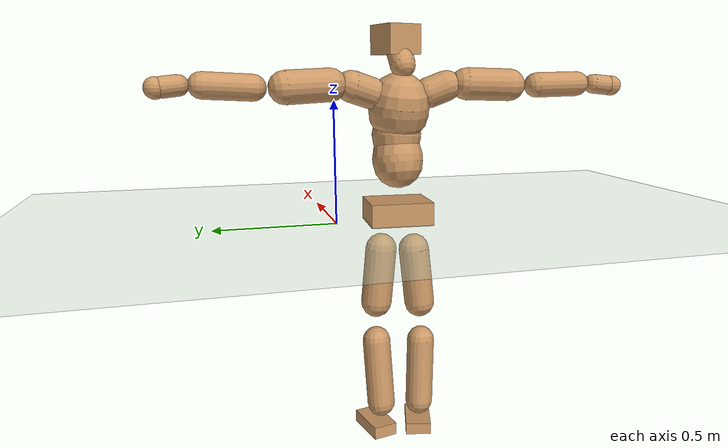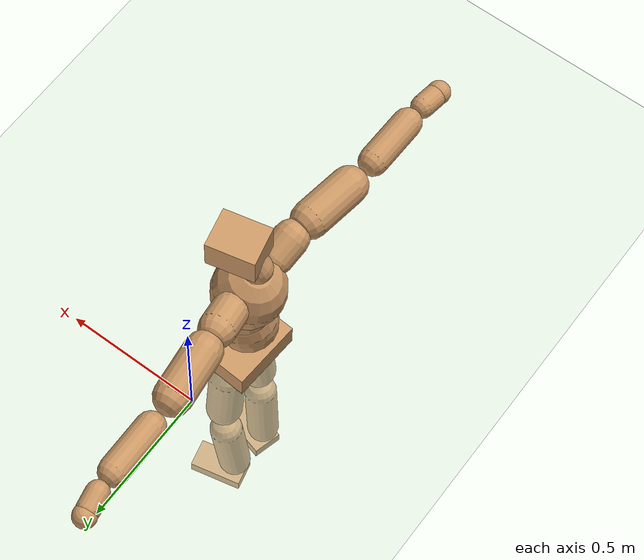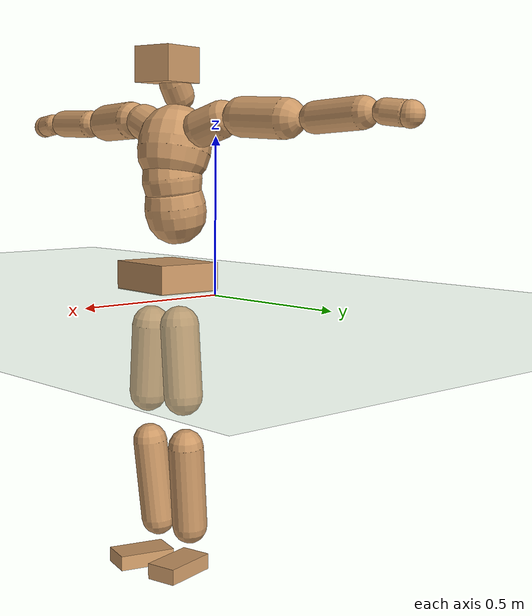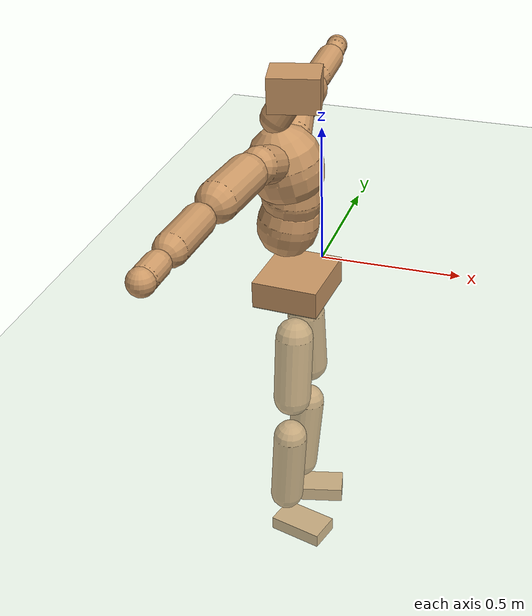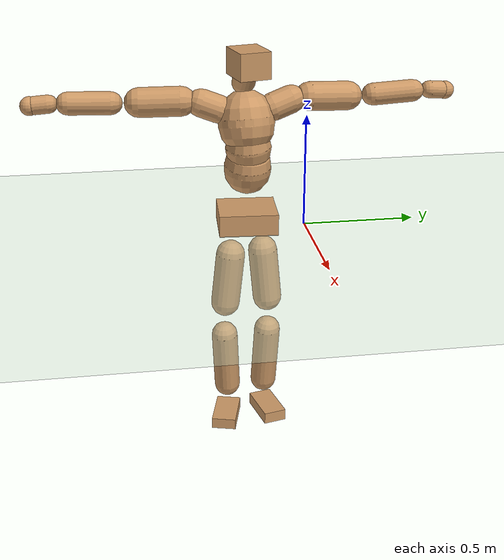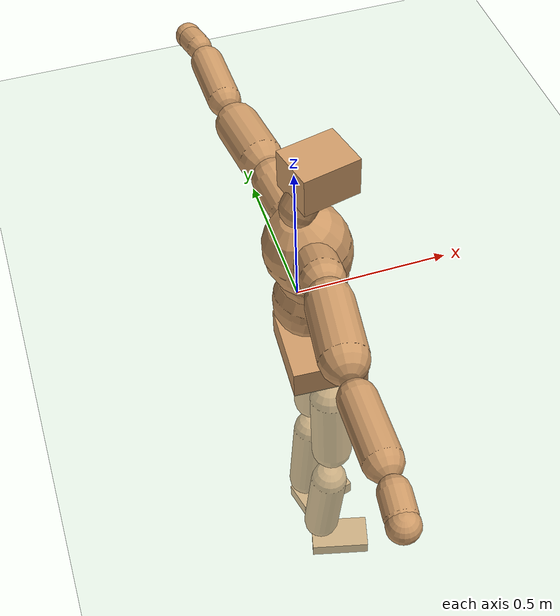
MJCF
<mujoco model="humanoid">
  <compiler coordinate="local" angle="radian"/>
  <default>
    <joint damping="0.0" armature="0.01" stiffness="0.0" limited="true"/>
    <geom conaffinity="1" condim="3" contype="7" margin="0.001" rgba="0.8 0.6 .4 1"/>
  </default>
  <asset>
    <texture type="skybox" builtin="gradient" rgb1=".4 .5 .6" rgb2="0 0 0" width="100" height="100"/>
    <texture builtin="flat" height="1278" mark="cross" markrgb="1 1 1" name="texgeom" random="0.01" rgb1="0.8 0.6 0.4" rgb2="0.8 0.6 0.4" type="cube" width="127"/>
    <texture builtin="checker" height="100" name="texplane" rgb1="0 0 0" rgb2="0.8 0.8 0.8" type="2d" width="100"/>
    <material name="MatPlane" reflectance="0.5" shininess="1" specular="1" texrepeat="60 60" texture="texplane"/>
    <material name="geom" texture="texgeom" texuniform="true"/>
  </asset>
  <worldbody>
    <light cutoff="100" diffuse="1 1 1" dir="-0 0 -1.3" directional="true" exponent="1" pos="0 0 1.3" specular=".1 .1 .1"/>
    <geom conaffinity="1" condim="3" name="floor" pos="0 0 0" rgba="0.8 0.9 0.8 1" size="100 100 .2" type="plane" material="MatPlane"/>
    <body name="Pelvis" pos="-0.0013 -0.2585 0.0503">
      <freejoint name="Pelvis"/>
      <geom type="box" contype="1" conaffinity="1" density="500" pos="-0.0095 0.0006 -0.0077" size="0.113 0.1294 0.0477" quat="0.9996 0.0000 0.0000 -0.0295" name="Pelvis"/>
      <body name="L_Hip" pos="-0.0055 0.0647 -0.0893">
        <joint name="L_Hip_x" type="hinge" pos="0 0 0" axis="1 0 0" stiffness="800" damping="80" armature="0.02" range="-180.0000 180.0000"/>
        <joint name="L_Hip_y" type="hinge" pos="0 0 0" axis="0 1 0" stiffness="800" damping="80" armature="0.02" range="-180.0000 180.0000"/>
        <joint name="L_Hip_z" type="hinge" pos="0 0 0" axis="0 0 1" stiffness="800" damping="80" armature="0.02" range="-180.0000 180.0000"/>
        <geom type="capsule" contype="1" conaffinity="1" density="500" fromto="0.0009 0.0074 -0.0788 0.0035 0.0294 -0.3153" size="0.0651" name="L_Hip"/>
        <body name="L_Knee" pos="0.0043 0.0368 -0.3942">
          <joint name="L_Knee_x" type="hinge" pos="0 0 0" axis="1 0 0" stiffness="800" damping="80" armature="0.02" range="-180.0000 180.0000"/>
          <joint name="L_Knee_y" type="hinge" pos="0 0 0" axis="0 1 0" stiffness="800" damping="80" armature="0.02" range="-180.0000 180.0000"/>
          <joint name="L_Knee_z" type="hinge" pos="0 0 0" axis="0 0 1" stiffness="800" damping="80" armature="0.02" range="-180.0000 180.0000"/>
          <geom type="capsule" contype="1" conaffinity="1" density="500" fromto="-0.0089 -0.0040 -0.0947 -0.0357 -0.0161 -0.3787" size="0.0597" name="L_Knee"/>
          <body name="L_Ankle" pos="-0.0446 -0.0202 -0.4733">
            <joint name="L_Ankle_x" type="hinge" pos="0 0 0" axis="1 0 0" stiffness="800" damping="80" armature="0.02" range="-180.0000 180.0000"/>
            <joint name="L_Ankle_y" type="hinge" pos="0 0 0" axis="0 1 0" stiffness="800" damping="80" armature="0.02" range="-180.0000 180.0000"/>
            <joint name="L_Ankle_z" type="hinge" pos="0 0 0" axis="0 0 1" stiffness="800" damping="80" armature="0.02" range="-180.0000 180.0000"/>
            <geom type="box" contype="1" conaffinity="1" density="500" pos="0.0679 0.0155 -0.0319" size="0.0981 0.0524 0.0267" quat="0.9937 0.0000 0.0000 0.1121" name="L_Ankle"/>
            <body name="L_Toe" pos="0.1359 0.0311 -0.0638">
              <joint name="L_Toe_x" type="hinge" pos="0 0 0" axis="1 0 0" stiffness="500" damping="50" armature="0.02" range="-180.0000 180.0000"/>
              <joint name="L_Toe_y" type="hinge" pos="0 0 0" axis="0 1 0" stiffness="500" damping="50" armature="0.02" range="-180.0000 180.0000"/>
              <joint name="L_Toe_z" type="hinge" pos="0 0 0" axis="0 0 1" stiffness="500" damping="50" armature="0.02" range="-180.0000 180.0000"/>
              <geom type="box" contype="1" conaffinity="1" density="500" pos="0.0000 0.0000 0.0324" size="0.0011 0.0026 0.0014" quat="0.9931 0.0000 0.0000 0.1174" name="L_Toe"/>
            </body>
          </body>
        </body>
      </body>
      <body name="R_Hip" pos="0.0015 -0.0667 -0.1005">
        <joint name="R_Hip_x" type="hinge" pos="0 0 0" axis="1 0 0" stiffness="800" damping="80" armature="0.02" range="-180.0000 180.0000"/>
        <joint name="R_Hip_y" type="hinge" pos="0 0 0" axis="0 1 0" stiffness="800" damping="80" armature="0.02" range="-180.0000 180.0000"/>
        <joint name="R_Hip_z" type="hinge" pos="0 0 0" axis="0 0 1" stiffness="800" damping="80" armature="0.02" range="-180.0000 180.0000"/>
        <geom type="capsule" contype="1" conaffinity="1" density="500" fromto="-0.0016 -0.0082 -0.0801 -0.0064 -0.0328 -0.3206" size="0.0649" name="R_Hip"/>
        <body name="R_Knee" pos="-0.008 -0.041 -0.4007">
          <joint name="R_Knee_x" type="hinge" pos="0 0 0" axis="1 0 0" stiffness="800" damping="80" armature="0.02" range="-180.0000 180.0000"/>
          <joint name="R_Knee_y" type="hinge" pos="0 0 0" axis="0 1 0" stiffness="800" damping="80" armature="0.02" range="-180.0000 180.0000"/>
          <joint name="R_Knee_z" type="hinge" pos="0 0 0" axis="0 0 1" stiffness="800" damping="80" armature="0.02" range="-180.0000 180.0000"/>
          <geom type="capsule" contype="1" conaffinity="1" density="500" fromto="-0.0078 0.0047 -0.0937 -0.0314 0.0188 -0.3747" size="0.0593" name="R_Knee"/>
          <body name="R_Ankle" pos="-0.0392 0.0235 -0.4684">
            <joint name="R_Ankle_x" type="hinge" pos="0 0 0" axis="1 0 0" stiffness="800" damping="80" armature="0.02" range="-180.0000 180.0000"/>
            <joint name="R_Ankle_y" type="hinge" pos="0 0 0" axis="0 1 0" stiffness="800" damping="80" armature="0.02" range="-180.0000 180.0000"/>
            <joint name="R_Ankle_z" type="hinge" pos="0 0 0" axis="0 0 1" stiffness="800" damping="80" armature="0.02" range="-180.0000 180.0000"/>
            <geom type="box" contype="1" conaffinity="1" density="500" pos="0.0713 -0.0190 -0.0340" size="0.0981 0.0556 0.0253" quat="0.9915 0.0000 0.0000 -0.1298" name="R_Ankle"/>
            <body name="R_Toe" pos="0.1427 -0.038 -0.0681">
              <joint name="R_Toe_x" type="hinge" pos="0 0 0" axis="1 0 0" stiffness="500" damping="50" armature="0.02" range="-180.0000 180.0000"/>
              <joint name="R_Toe_y" type="hinge" pos="0 0 0" axis="0 1 0" stiffness="500" damping="50" armature="0.02" range="-180.0000 180.0000"/>
              <joint name="R_Toe_z" type="hinge" pos="0 0 0" axis="0 0 1" stiffness="500" damping="50" armature="0.02" range="-180.0000 180.0000"/>
              <geom type="box" contype="1" conaffinity="1" density="500" pos="0.0000 0.0000 0.0350" size="0.0013 0.0027 0.0013" quat="0.9926 0.0000 0.0000 -0.1217" name="R_Toe"/>
            </body>
          </body>
        </body>
      </body>
      <body name="Torso" pos="-0.0527 0.0054 0.1436">
        <joint name="Torso_x" type="hinge" pos="0 0 0" axis="1 0 0" stiffness="1000" damping="100" armature="0.02" range="-180.0000 180.0000"/>
        <joint name="Torso_y" type="hinge" pos="0 0 0" axis="0 1 0" stiffness="1000" damping="100" armature="0.02" range="-180.0000 180.0000"/>
        <joint name="Torso_z" type="hinge" pos="0 0 0" axis="0 0 1" stiffness="1000" damping="100" armature="0.02" range="-180.0000 180.0000"/>
        <geom type="capsule" contype="1" conaffinity="1" density="500" fromto="0.0147 0.0031 0.0833 0.0098 0.0021 0.0555" size="0.1032" name="Torso"/>
        <body name="Spine" pos="0.0245 0.0052 0.1389">
          <joint name="Spine_x" type="hinge" pos="0 0 0" axis="1 0 0" stiffness="1000" damping="100" armature="0.02" range="-180.0000 180.0000"/>
          <joint name="Spine_y" type="hinge" pos="0 0 0" axis="0 1 0" stiffness="1000" damping="100" armature="0.02" range="-180.0000 180.0000"/>
          <joint name="Spine_z" type="hinge" pos="0 0 0" axis="0 0 1" stiffness="1000" damping="100" armature="0.02" range="-180.0000 180.0000"/>
          <geom type="capsule" contype="1" conaffinity="1" density="500" fromto="0.0031 -0.0023 0.0339 0.0020 -0.0016 0.0226" size="0.1006" name="Spine"/>
          <body name="Chest" pos="0.0051 -0.0039 0.0564">
            <joint name="Chest_x" type="hinge" pos="0 0 0" axis="1 0 0" stiffness="1000" damping="100" armature="0.02" range="-180.0000 180.0000"/>
            <joint name="Chest_y" type="hinge" pos="0 0 0" axis="0 1 0" stiffness="1000" damping="100" armature="0.02" range="-180.0000 180.0000"/>
            <joint name="Chest_z" type="hinge" pos="0 0 0" axis="0 0 1" stiffness="1000" damping="100" armature="0.02" range="-180.0000 180.0000"/>
            <geom type="capsule" contype="1" conaffinity="1" density="500" fromto="-0.0225 -0.0050 0.0979 -0.0150 -0.0033 0.0653" size="0.1232" name="Chest"/>
            <body name="Neck" pos="-0.0558 -0.0145 0.2324">
              <joint name="Neck_x" type="hinge" pos="0 0 0" axis="1 0 0" stiffness="500" damping="50" armature="0.02" range="-180.0000 180.0000"/>
              <joint name="Neck_y" type="hinge" pos="0 0 0" axis="0 1 0" stiffness="500" damping="50" armature="0.02" range="-180.0000 180.0000"/>
              <joint name="Neck_z" type="hinge" pos="0 0 0" axis="0 0 1" stiffness="500" damping="50" armature="0.02" range="-180.0000 180.0000"/>
              <geom type="capsule" contype="1" conaffinity="1" density="500" fromto="0.0093 0.0018 0.0149 0.0372 0.0073 0.0596" size="0.0507" name="Neck"/>
              <body name="Head" pos="0.0465 0.0091 0.0745">
                <joint name="Head_x" type="hinge" pos="0 0 0" axis="1 0 0" stiffness="500" damping="50" armature="0.02" range="-180.0000 180.0000"/>
                <joint name="Head_y" type="hinge" pos="0 0 0" axis="0 1 0" stiffness="500" damping="50" armature="0.02" range="-180.0000 180.0000"/>
                <joint name="Head_z" type="hinge" pos="0 0 0" axis="0 0 1" stiffness="500" damping="50" armature="0.02" range="-180.0000 180.0000"/>
                <geom type="box" contype="1" conaffinity="1" density="500" pos="0.0243 0.0056 0.0382" size="0.0837 0.0688 0.0579" quat="0.9936 0.0000 0.0000 0.1125" name="Head"/>
              </body>
            </body>
            <body name="L_Thorax" pos="-0.0275 0.0835 0.1293">
              <joint name="L_Thorax_x" type="hinge" pos="0 0 0" axis="1 0 0" stiffness="500" damping="50" armature="0.02" range="-180.0000 180.0000"/>
              <joint name="L_Thorax_y" type="hinge" pos="0 0 0" axis="0 1 0" stiffness="500" damping="50" armature="0.02" range="-180.0000 180.0000"/>
              <joint name="L_Thorax_z" type="hinge" pos="0 0 0" axis="0 0 1" stiffness="500" damping="50" armature="0.02" range="-180.0000 180.0000"/>
              <geom type="capsule" contype="1" conaffinity="1" density="500" fromto="-0.0055 0.0281 0.0091 -0.0221 0.1122 0.0365" size="0.0621" name="L_Thorax"/>
              <body name="L_Shoulder" pos="-0.0277 0.1403 0.0456">
                <joint name="L_Shoulder_x" type="hinge" pos="0 0 0" axis="1 0 0" stiffness="500" damping="50" armature="0.02" range="-720.0000 720.0000"/>
                <joint name="L_Shoulder_y" type="hinge" pos="0 0 0" axis="0 1 0" stiffness="500" damping="50" armature="0.02" range="-720.0000 720.0000"/>
                <joint name="L_Shoulder_z" type="hinge" pos="0 0 0" axis="0 0 1" stiffness="500" damping="50" armature="0.02" range="-720.0000 720.0000"/>
                <geom type="capsule" contype="1" conaffinity="1" density="500" fromto="-0.0063 0.0575 -0.0030 -0.0252 0.2299 -0.0120" size="0.0644" name="L_Shoulder"/>
                <body name="L_Elbow" pos="-0.0314 0.2873 -0.015">
                  <joint name="L_Elbow_x" type="hinge" pos="0 0 0" axis="1 0 0" stiffness="500" damping="50" armature="0.02" range="-720.0000 720.0000"/>
                  <joint name="L_Elbow_y" type="hinge" pos="0 0 0" axis="0 1 0" stiffness="500" damping="50" armature="0.02" range="-720.0000 720.0000"/>
                  <joint name="L_Elbow_z" type="hinge" pos="0 0 0" axis="0 0 1" stiffness="500" damping="50" armature="0.02" range="-720.0000 720.0000"/>
                  <geom type="capsule" contype="1" conaffinity="1" density="500" fromto="-0.0013 0.0603 0.0030 -0.0053 0.2411 0.0120" size="0.0494" name="L_Elbow"/>
                  <body name="L_Wrist" pos="-0.0066 0.3014 0.015">
                    <joint name="L_Wrist_x" type="hinge" pos="0 0 0" axis="1 0 0" stiffness="300" damping="30" armature="0.02" range="-180.0000 180.0000"/>
                    <joint name="L_Wrist_y" type="hinge" pos="0 0 0" axis="0 1 0" stiffness="300" damping="30" armature="0.02" range="-180.0000 180.0000"/>
                    <joint name="L_Wrist_z" type="hinge" pos="0 0 0" axis="0 0 1" stiffness="300" damping="30" armature="0.02" range="-180.0000 180.0000"/>
                    <geom type="capsule" contype="1" conaffinity="1" density="500" fromto="-0.0035 0.0195 -0.0022 -0.0140 0.0780 -0.0090" size="0.0387" name="L_Wrist"/>
                    <body name="L_Hand" pos="-0.0175 0.0975 -0.0112">
                      <joint name="L_Hand_x" type="hinge" pos="0 0 0" axis="1 0 0" stiffness="300" damping="30" armature="0.02" range="-180.0000 180.0000"/>
                      <joint name="L_Hand_y" type="hinge" pos="0 0 0" axis="0 1 0" stiffness="300" damping="30" armature="0.02" range="-180.0000 180.0000"/>
                      <joint name="L_Hand_z" type="hinge" pos="0 0 0" axis="0 0 1" stiffness="300" damping="30" armature="0.02" range="-180.0000 180.0000"/>
                      <geom type="sphere" contype="1" conaffinity="1" density="500" size="0.0399" pos="0.0000 0.0000 0.0000" name="L_Hand"/>
                    </body>
                  </body>
                </body>
              </body>
            </body>
            <body name="R_Thorax" pos="-0.0294 -0.094 0.1281">
              <joint name="R_Thorax_x" type="hinge" pos="0 0 0" axis="1 0 0" stiffness="500" damping="50" armature="0.02" range="-180.0000 180.0000"/>
              <joint name="R_Thorax_y" type="hinge" pos="0 0 0" axis="0 1 0" stiffness="500" damping="50" armature="0.02" range="-180.0000 180.0000"/>
              <joint name="R_Thorax_z" type="hinge" pos="0 0 0" axis="0 0 1" stiffness="500" damping="50" armature="0.02" range="-180.0000 180.0000"/>
              <geom type="capsule" contype="1" conaffinity="1" density="500" fromto="-0.0027 -0.0255 0.0096 -0.0109 -0.1022 0.0385" size="0.0615" name="R_Thorax"/>
              <body name="R_Shoulder" pos="-0.0136 -0.1277 0.0481">
                <joint name="R_Shoulder_x" type="hinge" pos="0 0 0" axis="1 0 0" stiffness="500" damping="50" armature="0.02" range="-720.0000 720.0000"/>
                <joint name="R_Shoulder_y" type="hinge" pos="0 0 0" axis="0 1 0" stiffness="500" damping="50" armature="0.02" range="-720.0000 720.0000"/>
                <joint name="R_Shoulder_z" type="hinge" pos="0 0 0" axis="0 0 1" stiffness="500" damping="50" armature="0.02" range="-720.0000 720.0000"/>
                <geom type="capsule" contype="1" conaffinity="1" density="500" fromto="-0.0078 -0.0590 -0.0017 -0.0311 -0.2361 -0.0068" size="0.0651" name="R_Shoulder"/>
                <body name="R_Elbow" pos="-0.0388 -0.2952 -0.0085">
                  <joint name="R_Elbow_x" type="hinge" pos="0 0 0" axis="1 0 0" stiffness="500" damping="50" armature="0.02" range="-720.0000 720.0000"/>
                  <joint name="R_Elbow_y" type="hinge" pos="0 0 0" axis="0 1 0" stiffness="500" damping="50" armature="0.02" range="-720.0000 720.0000"/>
                  <joint name="R_Elbow_z" type="hinge" pos="0 0 0" axis="0 0 1" stiffness="500" damping="50" armature="0.02" range="-720.0000 720.0000"/>
                  <geom type="capsule" contype="1" conaffinity="1" density="500" fromto="-0.0016 -0.0603 0.0015 -0.0065 -0.2411 0.0060" size="0.0503" name="R_Elbow"/>
                  <body name="R_Wrist" pos="-0.0082 -0.3014 0.0075">
                    <joint name="R_Wrist_x" type="hinge" pos="0 0 0" axis="1 0 0" stiffness="300" damping="30" armature="0.02" range="-180.0000 180.0000"/>
                    <joint name="R_Wrist_y" type="hinge" pos="0 0 0" axis="0 1 0" stiffness="300" damping="30" armature="0.02" range="-180.0000 180.0000"/>
                    <joint name="R_Wrist_z" type="hinge" pos="0 0 0" axis="0 0 1" stiffness="300" damping="30" armature="0.02" range="-180.0000 180.0000"/>
                    <geom type="capsule" contype="1" conaffinity="1" density="500" fromto="-0.0022 -0.0201 -0.0020 -0.0088 -0.0803 -0.0078" size="0.0399" name="R_Wrist"/>
                    <body name="R_Hand" pos="-0.011 -0.1004 -0.0098">
                      <joint name="R_Hand_x" type="hinge" pos="0 0 0" axis="1 0 0" stiffness="300" damping="30" armature="0.02" range="-180.0000 180.0000"/>
                      <joint name="R_Hand_y" type="hinge" pos="0 0 0" axis="0 1 0" stiffness="300" damping="30" armature="0.02" range="-180.0000 180.0000"/>
                      <joint name="R_Hand_z" type="hinge" pos="0 0 0" axis="0 0 1" stiffness="300" damping="30" armature="0.02" range="-180.0000 180.0000"/>
                      <geom type="sphere" contype="1" conaffinity="1" density="500" size="0.0409" pos="0.0000 0.0000 0.0000" name="R_Hand"/>
                    </body>
                  </body>
                </body>
              </body>
            </body>
          </body>
        </body>
      </body>
    </body>
  </worldbody>
  <actuator>
    <motor name="L_Hip_x" joint="L_Hip_x" gear="500"/>
    <motor name="L_Hip_y" joint="L_Hip_y" gear="500"/>
    <motor name="L_Hip_z" joint="L_Hip_z" gear="500"/>
    <motor name="L_Knee_x" joint="L_Knee_x" gear="500"/>
    <motor name="L_Knee_y" joint="L_Knee_y" gear="500"/>
    <motor name="L_Knee_z" joint="L_Knee_z" gear="500"/>
    <motor name="L_Ankle_x" joint="L_Ankle_x" gear="500"/>
    <motor name="L_Ankle_y" joint="L_Ankle_y" gear="500"/>
    <motor name="L_Ankle_z" joint="L_Ankle_z" gear="500"/>
    <motor name="L_Toe_x" joint="L_Toe_x" gear="500"/>
    <motor name="L_Toe_y" joint="L_Toe_y" gear="500"/>
    <motor name="L_Toe_z" joint="L_Toe_z" gear="500"/>
    <motor name="R_Hip_x" joint="R_Hip_x" gear="500"/>
    <motor name="R_Hip_y" joint="R_Hip_y" gear="500"/>
    <motor name="R_Hip_z" joint="R_Hip_z" gear="500"/>
    <motor name="R_Knee_x" joint="R_Knee_x" gear="500"/>
    <motor name="R_Knee_y" joint="R_Knee_y" gear="500"/>
    <motor name="R_Knee_z" joint="R_Knee_z" gear="500"/>
    <motor name="R_Ankle_x" joint="R_Ankle_x" gear="500"/>
    <motor name="R_Ankle_y" joint="R_Ankle_y" gear="500"/>
    <motor name="R_Ankle_z" joint="R_Ankle_z" gear="500"/>
    <motor name="R_Toe_x" joint="R_Toe_x" gear="500"/>
    <motor name="R_Toe_y" joint="R_Toe_y" gear="500"/>
    <motor name="R_Toe_z" joint="R_Toe_z" gear="500"/>
    <motor name="Torso_x" joint="Torso_x" gear="500"/>
    <motor name="Torso_y" joint="Torso_y" gear="500"/>
    <motor name="Torso_z" joint="Torso_z" gear="500"/>
    <motor name="Spine_x" joint="Spine_x" gear="500"/>
    <motor name="Spine_y" joint="Spine_y" gear="500"/>
    <motor name="Spine_z" joint="Spine_z" gear="500"/>
    <motor name="Chest_x" joint="Chest_x" gear="500"/>
    <motor name="Chest_y" joint="Chest_y" gear="500"/>
    <motor name="Chest_z" joint="Chest_z" gear="500"/>
    <motor name="Neck_x" joint="Neck_x" gear="500"/>
    <motor name="Neck_y" joint="Neck_y" gear="500"/>
    <motor name="Neck_z" joint="Neck_z" gear="500"/>
    <motor name="Head_x" joint="Head_x" gear="500"/>
    <motor name="Head_y" joint="Head_y" gear="500"/>
    <motor name="Head_z" joint="Head_z" gear="500"/>
    <motor name="L_Thorax_x" joint="L_Thorax_x" gear="500"/>
    <motor name="L_Thorax_y" joint="L_Thorax_y" gear="500"/>
    <motor name="L_Thorax_z" joint="L_Thorax_z" gear="500"/>
    <motor name="L_Shoulder_x" joint="L_Shoulder_x" gear="500"/>
    <motor name="L_Shoulder_y" joint="L_Shoulder_y" gear="500"/>
    <motor name="L_Shoulder_z" joint="L_Shoulder_z" gear="500"/>
    <motor name="L_Elbow_x" joint="L_Elbow_x" gear="500"/>
    <motor name="L_Elbow_y" joint="L_Elbow_y" gear="500"/>
    <motor name="L_Elbow_z" joint="L_Elbow_z" gear="500"/>
    <motor name="L_Wrist_x" joint="L_Wrist_x" gear="500"/>
    <motor name="L_Wrist_y" joint="L_Wrist_y" gear="500"/>
    <motor name="L_Wrist_z" joint="L_Wrist_z" gear="500"/>
    <motor name="L_Hand_x" joint="L_Hand_x" gear="500"/>
    <motor name="L_Hand_y" joint="L_Hand_y" gear="500"/>
    <motor name="L_Hand_z" joint="L_Hand_z" gear="500"/>
    <motor name="R_Thorax_x" joint="R_Thorax_x" gear="500"/>
    <motor name="R_Thorax_y" joint="R_Thorax_y" gear="500"/>
    <motor name="R_Thorax_z" joint="R_Thorax_z" gear="500"/>
    <motor name="R_Shoulder_x" joint="R_Shoulder_x" gear="500"/>
    <motor name="R_Shoulder_y" joint="R_Shoulder_y" gear="500"/>
    <motor name="R_Shoulder_z" joint="R_Shoulder_z" gear="500"/>
    <motor name="R_Elbow_x" joint="R_Elbow_x" gear="500"/>
    <motor name="R_Elbow_y" joint="R_Elbow_y" gear="500"/>
    <motor name="R_Elbow_z" joint="R_Elbow_z" gear="500"/>
    <motor name="R_Wrist_x" joint="R_Wrist_x" gear="500"/>
    <motor name="R_Wrist_y" joint="R_Wrist_y" gear="500"/>
    <motor name="R_Wrist_z" joint="R_Wrist_z" gear="500"/>
    <motor name="R_Hand_x" joint="R_Hand_x" gear="500"/>
    <motor name="R_Hand_y" joint="R_Hand_y" gear="500"/>
    <motor name="R_Hand_z" joint="R_Hand_z" gear="500"/>
  </actuator>
  <contact>
    <exclude body1="Torso" body2="Chest"/>
    <exclude body1="Head" body2="Chest"/>
    <exclude body1="R_Knee" body2="R_Toe"/>
    <exclude body1="R_Knee" body2="L_Ankle"/>
    <exclude body1="R_Knee" body2="L_Toe"/>
    <exclude body1="L_Knee" body2="L_Toe"/>
    <exclude body1="L_Knee" body2="R_Ankle"/>
    <exclude body1="L_Knee" body2="R_Toe"/>
    <exclude body1="L_Shoulder" body2="Chest"/>
    <exclude body1="R_Shoulder" body2="Chest"/>
  </contact>
  <sensor/>
  <size njmax="700" nconmax="700"/>
</mujoco>
